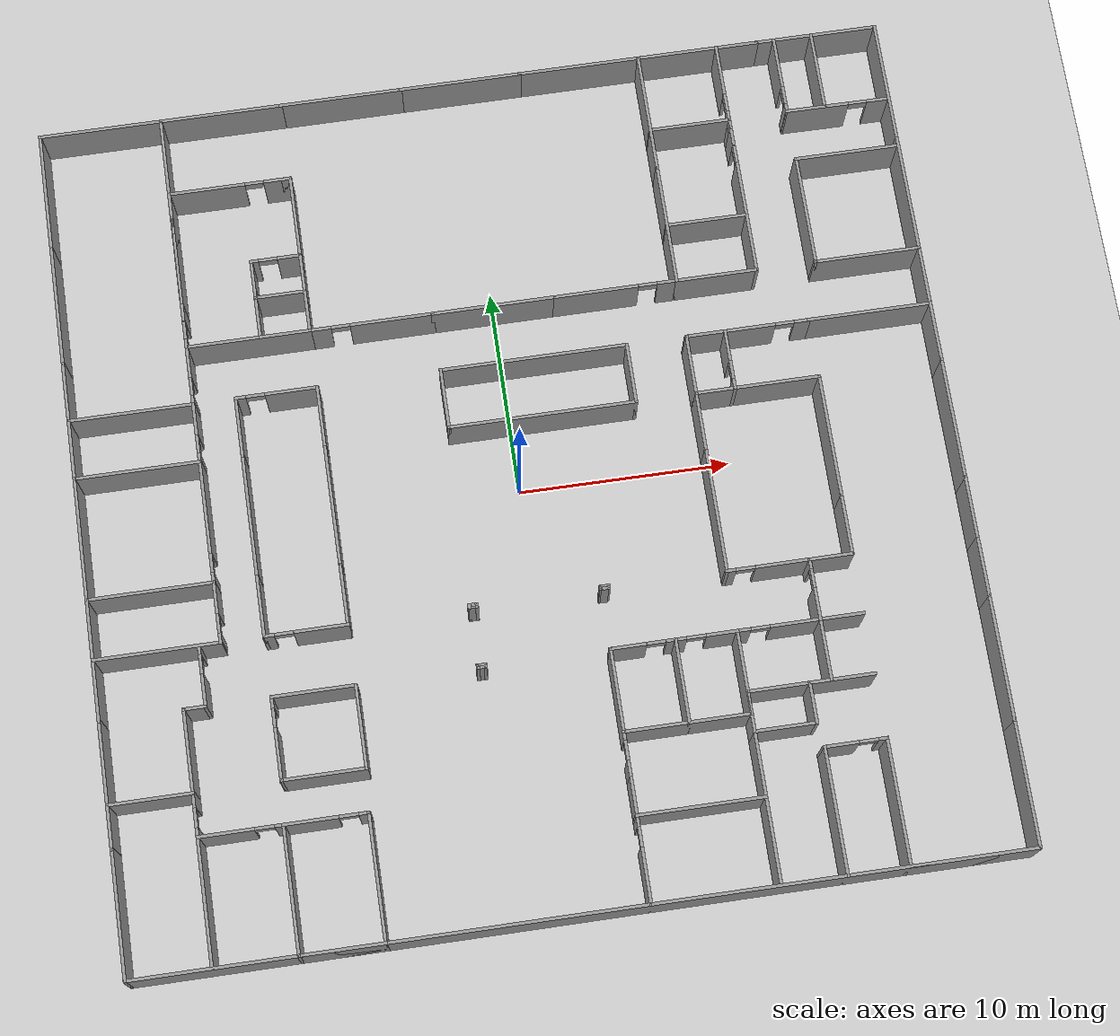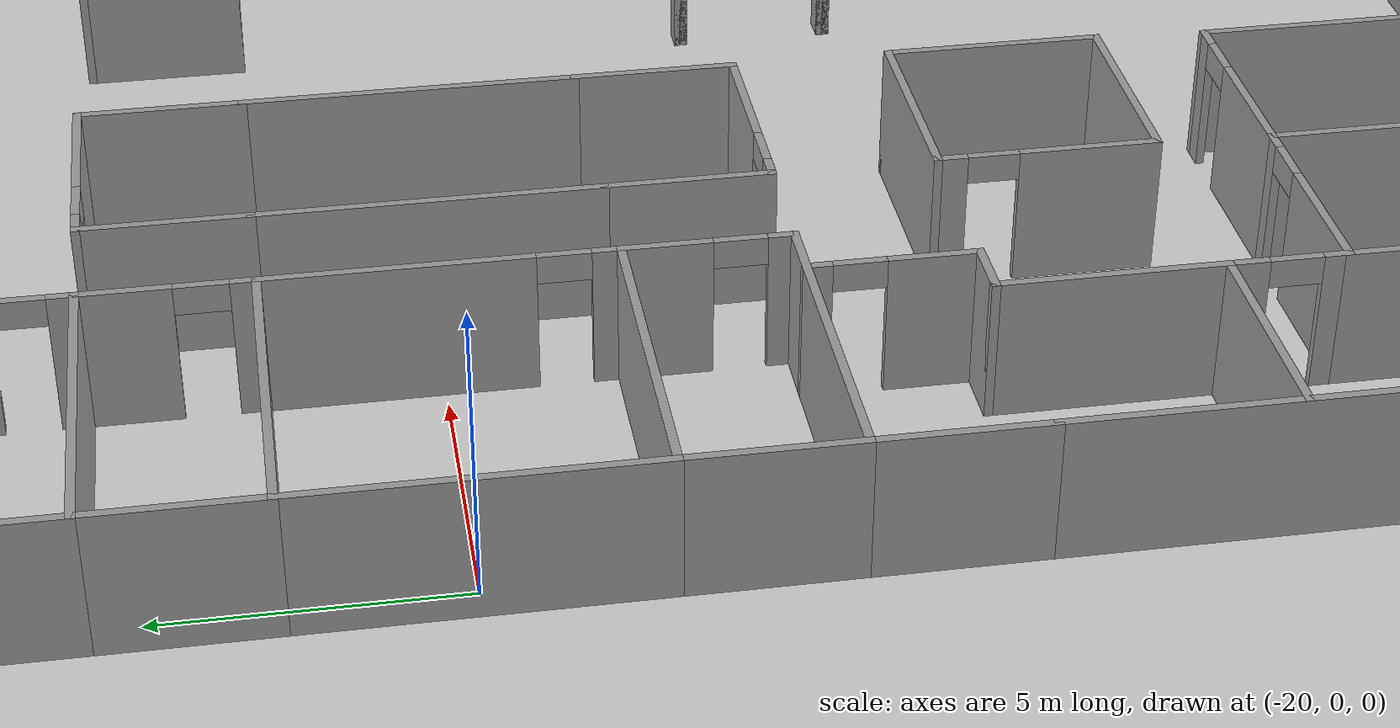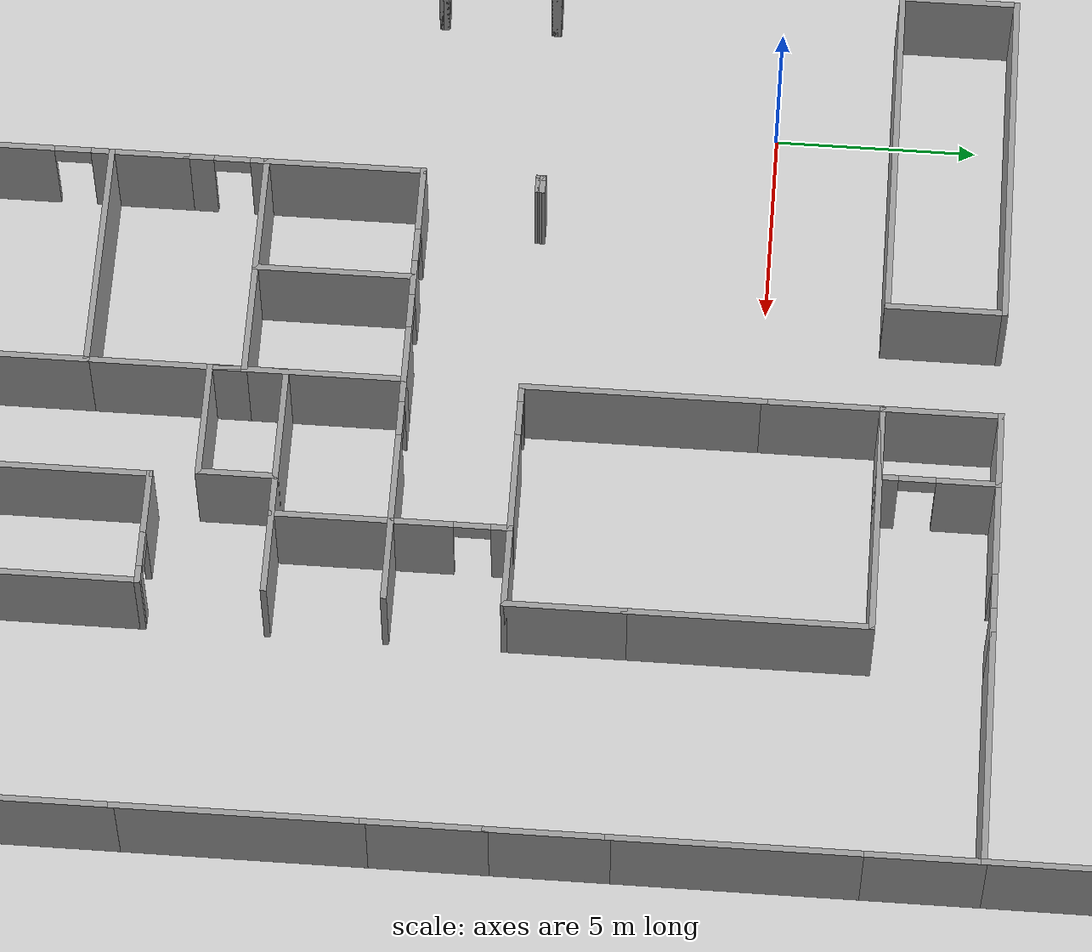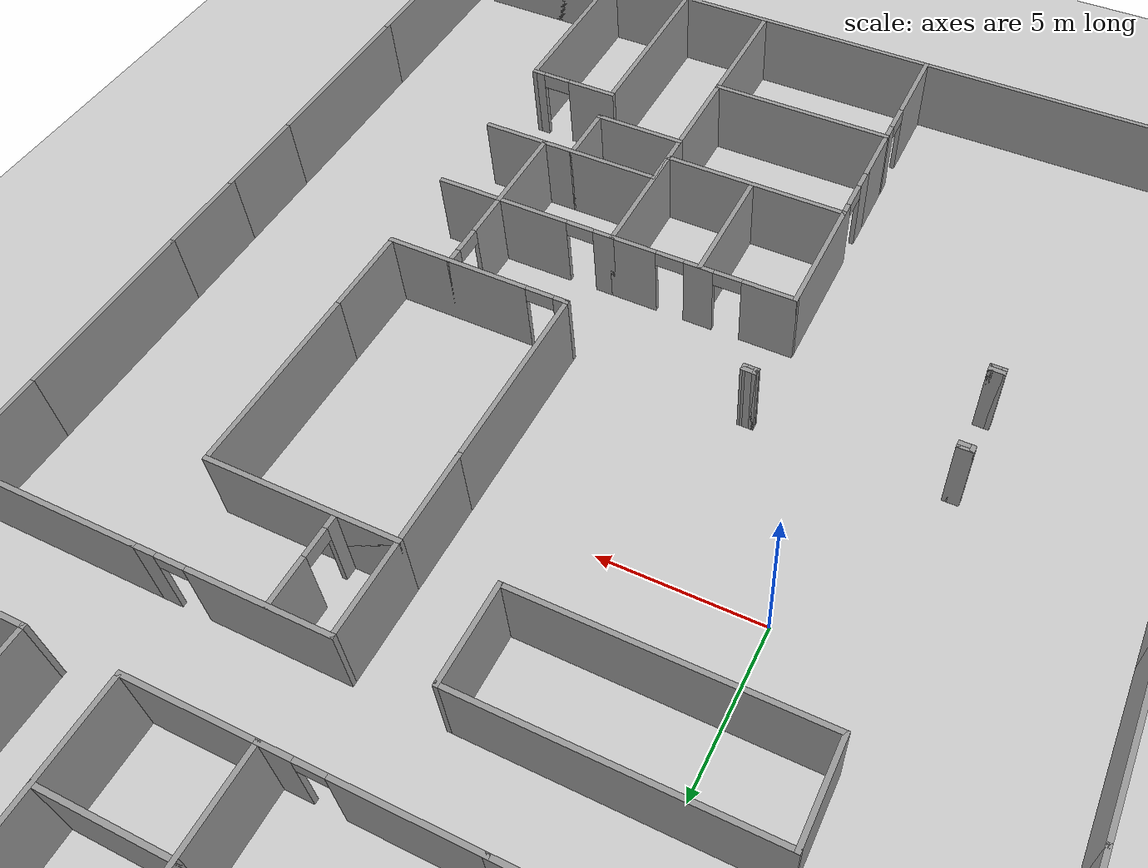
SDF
<?xml version="1.0" ?>
<sdf version='1.6'>
  <world name='default'>
    <light name='sun' type='directional'>
      <cast_shadows>1</cast_shadows>
      <pose frame=''>0 0 10 0 -0 0</pose>
      <diffuse>0.8 0.8 0.8 1</diffuse>
      <specular>0.2 0.2 0.2 1</specular>
      <attenuation>
        <range>1000</range>
        <constant>0.9</constant>
        <linear>0.01</linear>
        <quadratic>0.001</quadratic>
      </attenuation>
      <direction>-0.5 0.1 -0.9</direction>
    </light>
    <model name='ground_plane'>
      <static>1</static>
      <link name='link'>
        <collision name='collision'>
          <geometry>
            <plane>
              <normal>0 0 1</normal>
              <size>100 100</size>
            </plane>
          </geometry>
          <surface>
            <contact>
              <collide_bitmask>65535</collide_bitmask>
              <ode/>
            </contact>
            <friction>
              <ode>
                <mu>100</mu>
                <mu2>50</mu2>
              </ode>
              <torsional>
                <ode/>
              </torsional>
            </friction>
            <bounce/>
          </surface>
          <max_contacts>10</max_contacts>
        </collision>
        <visual name='visual'>
          <cast_shadows>0</cast_shadows>
          <geometry>
            <plane>
              <normal>0 0 1</normal>
              <size>100 100</size>
            </plane>
          </geometry>
          <material>
            <script>
              <uri>file://media/materials/scripts/gazebo.material</uri>
              <name>Gazebo/Grey</name>
            </script>
          </material>
        </visual>
        <self_collide>0</self_collide>
        <enable_wind>0</enable_wind>
        <kinematic>0</kinematic>
      </link>
    </model>
    <gravity>0 0 -9.8</gravity>
    <magnetic_field>6e-06 2.3e-05 -4.2e-05</magnetic_field>
    <atmosphere type='adiabatic'/>
    <physics name='default_physics' default='0' type='ode'>
      <max_step_size>0.001</max_step_size>
      <real_time_factor>1</real_time_factor>
      <real_time_update_rate>1000</real_time_update_rate>
    </physics>
    <scene>
      <ambient>0.4 0.4 0.4 1</ambient>
      <background>0.7 0.7 0.7 1</background>
      <shadows>1</shadows>
    </scene>
    <wind/>
    <spherical_coordinates>
      <surface_model>EARTH_WGS84</surface_model>
      <latitude_deg>0</latitude_deg>
      <longitude_deg>0</longitude_deg>
      <elevation>0</elevation>
      <heading_deg>0</heading_deg>
    </spherical_coordinates>

    <gui fullscreen='0'>
      <camera name='user_camera'>
        <pose frame=''>5 -5 6 0 0.275643 2.35619</pose>
        <view_controller>orbit</view_controller>
        <projection_type>perspective</projection_type>
      </camera>
    </gui>

    <plugin name = "puppeteer" filename = "libpuppeteer.so">
      <building_name>building</building_name>
      <robot_name>jackal</robot_name>
    </plugin>

    <include>
      <name>building</name>
      <pose>0 0 0 0 0 0</pose>
      <uri>model://myhal_V3</uri>
	  </include>

  <!-- insert stuff below -->

  </world>
</sdf>
